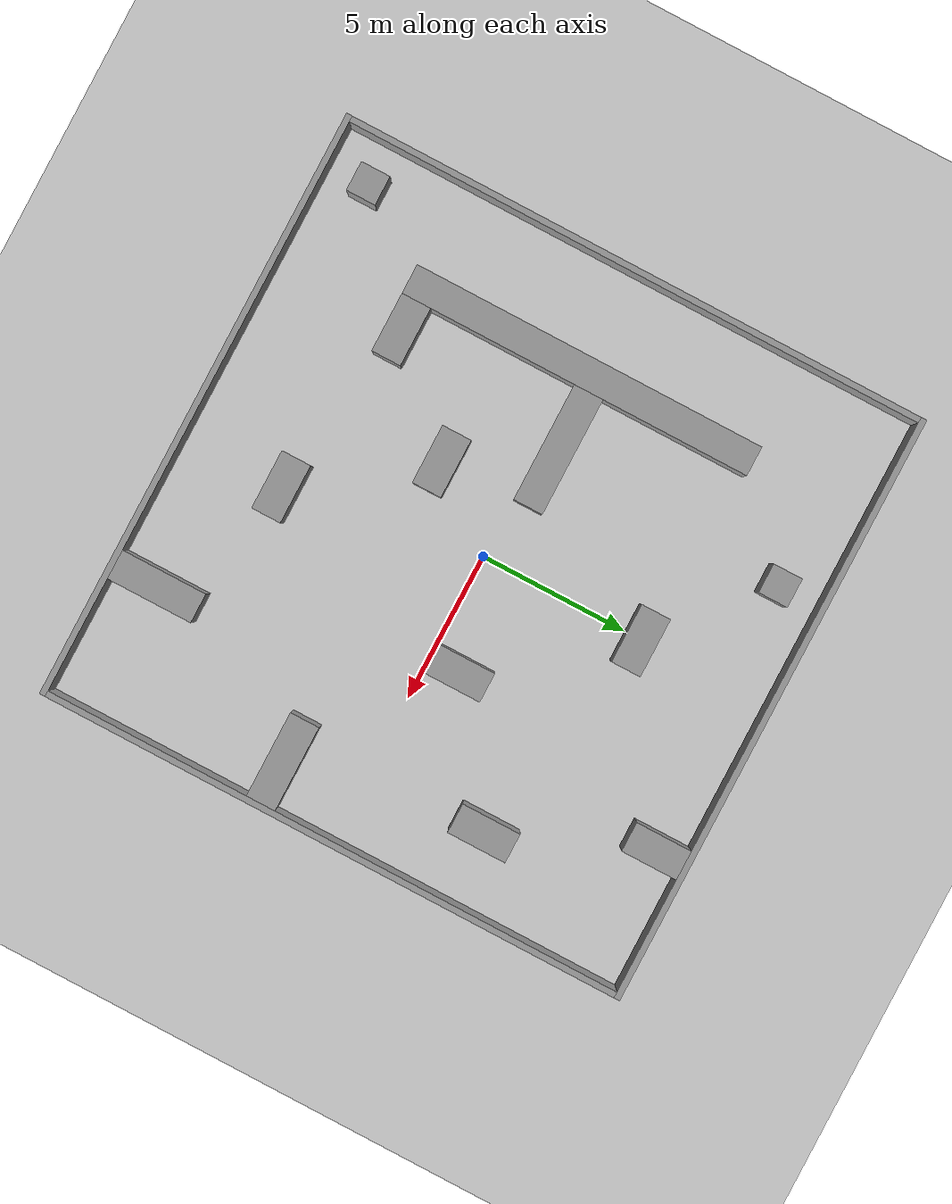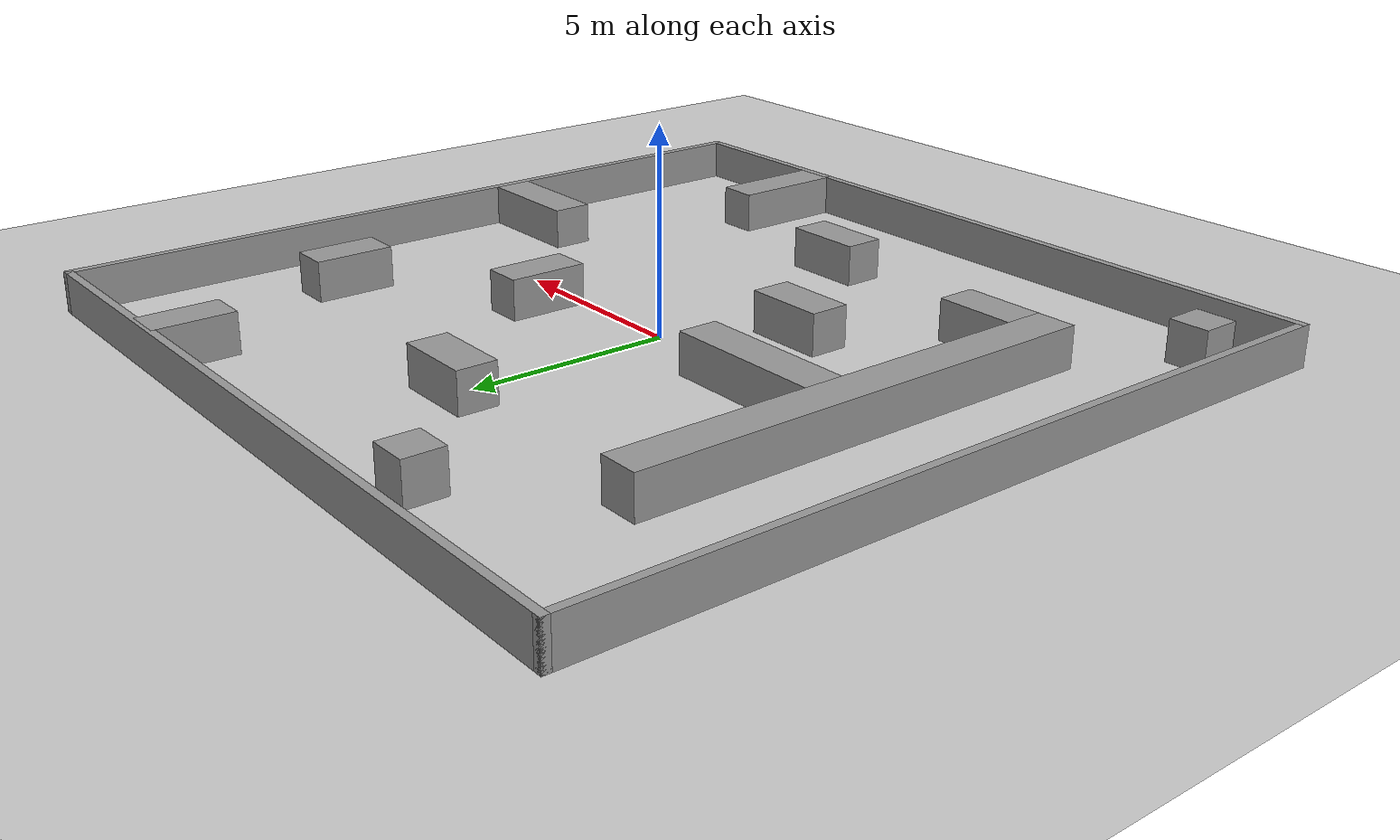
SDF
<?xml version="1.0" ?>
<sdf version="1.3">
  <world name="default">
    <!-- A global light source -->
    <include>
      <uri>model://sun</uri>
    </include>

    <!-- A ground plane -->
    <include>
      <uri>model://ground_plane</uri>
    </include>

<model name='BuildingDefaultName'>

    <link name='Wall_1'>
      <collision name='Wall_1_Collision'>
        <geometry>
          <box>
            <size>20.2 0.2 2</size>
          </box>
        </geometry>
        <pose>10.0 0 0 0 -0 0</pose>
      </collision>
      <visual name='Wall_1_Visual'>
        <pose>10.0 0 0 0 -0 0</pose>
        <geometry>
          <box>
            <size>20.2 0.2 2</size>
          </box>
        </geometry>
        <material>
          <script>
            <uri>file://media/materials/scripts/gazebo.material</uri>
            <name>Gazebo/Grey</name>
          </script>
        </material>
      </visual>
      <velocity_decay>
        <linear>0</linear>
        <angular>0</angular>
      </velocity_decay>
      <pose>-10.0 -10.0 0 0 -0 0</pose>
    </link>
    <link name='Wall_2'>
      <collision name='Wall_2_Collision'>
        <geometry>
          <box>
            <size>20.2 0.2 2</size>
          </box>
        </geometry>
        <pose>10.0 0 0 0 -0 0</pose>
      </collision>
      <visual name='Wall_2_Visual'>
        <pose>10.0 0 0 0 -0 0</pose>
        <geometry>
          <box>
            <size>20.2 0.2 2</size>
          </box>
        </geometry>
        <material>
          <script>
            <uri>file://media/materials/scripts/gazebo.material</uri>
            <name>Gazebo/Grey</name>
          </script>
        </material>
      </visual>
      <velocity_decay>
        <linear>0</linear>
        <angular>0</angular>
      </velocity_decay>
      <pose>-10.0 10.0 0 0 -0 0</pose>
    </link>
    <link name='Wall_3'>
      <collision name='Wall_3_Collision'>
        <geometry>
          <box>
            <size>0.2 20.2 2</size>
          </box>
        </geometry>
        <pose>0.0 10.0 0 0 -0 0</pose>
      </collision>
      <visual name='Wall_3_Visual'>
        <pose>0.0 10.0 0 0 -0 0</pose>
        <geometry>
          <box>
            <size>0.2 20.2 2</size>
          </box>
        </geometry>
        <material>
          <script>
            <uri>file://media/materials/scripts/gazebo.material</uri>
            <name>Gazebo/Grey</name>
          </script>
        </material>
      </visual>
      <velocity_decay>
        <linear>0</linear>
        <angular>0</angular>
      </velocity_decay>
      <pose>-10.0 -10.0 0 0 -0 0</pose>
    </link>
    <link name='Wall_4'>
      <collision name='Wall_4_Collision'>
        <geometry>
          <box>
            <size>0.2 20.2 2</size>
          </box>
        </geometry>
        <pose>0.0 10.0 0 0 -0 0</pose>
      </collision>
      <visual name='Wall_4_Visual'>
        <pose>0.0 10.0 0 0 -0 0</pose>
        <geometry>
          <box>
            <size>0.2 20.2 2</size>
          </box>
        </geometry>
        <material>
          <script>
            <uri>file://media/materials/scripts/gazebo.material</uri>
            <name>Gazebo/Grey</name>
          </script>
        </material>
      </visual>
      <velocity_decay>
        <linear>0</linear>
        <angular>0</angular>
      </velocity_decay>
      <pose>10.0 -10.0 0 0 -0 0</pose>
    </link>
    <link name='Wall_5'>
      <collision name='Wall_5_Collision'>
        <geometry>
          <box>
            <size>1.0 12.0 2</size>
          </box>
        </geometry>
        <pose>-4.5 -4.0 0 0 -0 0</pose>
      </collision>
      <visual name='Wall_5_Visual'>
        <pose>-4.5 -4.0 0 0 -0 0</pose>
        <geometry>
          <box>
            <size>1.0 12.0 2</size>
          </box>
        </geometry>
        <material>
          <script>
            <uri>file://media/materials/scripts/gazebo.material</uri>
            <name>Gazebo/Grey</name>
          </script>
        </material>
      </visual>
      <velocity_decay>
        <linear>0</linear>
        <angular>0</angular>
      </velocity_decay>
      <pose>-2.0 4.0 0 0 -0 0</pose>
    </link>
    <link name='Wall_6'>
      <collision name='Wall_6_Collision'>
        <geometry>
          <box>
            <size>4.0 1.0 2</size>
          </box>
        </geometry>
        <pose>3.0 -6.5 0 0 -0 0</pose>
      </collision>
      <visual name='Wall_6_Visual'>
        <pose>3.0 -6.5 0 0 -0 0</pose>
        <geometry>
          <box>
            <size>4.0 1.0 2</size>
          </box>
        </geometry>
        <material>
          <script>
            <uri>file://media/materials/scripts/gazebo.material</uri>
            <name>Gazebo/Grey</name>
          </script>
        </material>
      </visual>
      <velocity_decay>
        <linear>0</linear>
        <angular>0</angular>
      </velocity_decay>
      <pose>-7.0 7.0 0 0 -0 0</pose>
    </link>
    <link name='Wall_7'>
      <collision name='Wall_7_Collision'>
        <geometry>
          <box>
            <size>2.0 1.0 2</size>
          </box>
        </geometry>
        <pose>7.0 -1.5 0 0 -0 0</pose>
      </collision>
      <visual name='Wall_7_Visual'>
        <pose>7.0 -1.5 0 0 -0 0</pose>
        <geometry>
          <box>
            <size>2.0 1.0 2</size>
          </box>
        </geometry>
        <material>
          <script>
            <uri>file://media/materials/scripts/gazebo.material</uri>
            <name>Gazebo/Grey</name>
          </script>
        </material>
      </visual>
      <velocity_decay>
        <linear>0</linear>
        <angular>0</angular>
      </velocity_decay>
      <pose>-7.0 7.0 0 0 -0 0</pose>
    </link>
    <link name='Wall_8'>
      <collision name='Wall_8_Collision'>
        <geometry>
          <box>
            <size>2.0 1.0 2</size>
          </box>
        </geometry>
        <pose>2.0 -12.50 0 0 -0 0</pose>
      </collision>
      <visual name='Wall_8_Visual'>
        <pose>2.0 -12.50 0 0 -0 0</pose>
        <geometry>
          <box>
            <size>2.0 1.0 2</size>
          </box>
        </geometry>
        <material>
          <script>
            <uri>file://media/materials/scripts/gazebo.material</uri>
            <name>Gazebo/Grey</name>
          </script>
        </material>
      </visual>
      <velocity_decay>
        <linear>0</linear>
        <angular>0</angular>
      </velocity_decay>
      <pose>-7.0 7.0 0 0 -0 0</pose>
    </link>
    <link name='Wall_9'>
      <collision name='Wall_9_Collision'>
        <geometry>
          <box>
            <size>3.0 1.0 2</size>
          </box>
        </geometry>
        <pose>10.5 -7.5 0 0 -0 0</pose>
      </collision>
      <visual name='Wall_9_Visual'>
        <pose>10.5 -7.5 0 0 -0 0</pose>
        <geometry>
          <box>
            <size>3.0 1.0 2</size>
          </box>
        </geometry>
        <material>
          <script>
            <uri>file://media/materials/scripts/gazebo.material</uri>
            <name>Gazebo/Grey</name>
          </script>
        </material>
      </visual>
      <velocity_decay>
        <linear>0</linear>
        <angular>0</angular>
      </velocity_decay>
      <pose>-2.0 5.0 0 0 -0 0</pose>
    </link>
    <link name='Wall_10'>
      <collision name='Wall_10_Collision'>
        <geometry>
          <box>
            <size>1.0 3.0 2</size>
          </box>
        </geometry>
        <pose>7.5 -13.5 0 0 -0 0</pose>
      </collision>
      <visual name='Wall_10_Visual'>
        <pose>7.5 -13.5 0 0 -0 0</pose>
        <geometry>
          <box>
            <size>1.0 3.0 2</size>
          </box>
        </geometry>
        <material>
          <script>
            <uri>file://media/materials/scripts/gazebo.material</uri>
            <name>Gazebo/Grey</name>
          </script>
        </material>
      </visual>
      <velocity_decay>
        <linear>0</linear>
        <angular>0</angular>
      </velocity_decay>
      <pose>-2.0 5.0 0 0 -0 0</pose>
    </link>
    <link name='Wall_11'>
      <collision name='Wall_11_Collision'>
        <geometry>
          <box>
            <size>2.0 1.0 2</size>
          </box>
        </geometry>
        <pose>5.0 -9.5 0 0 -0 0</pose>
      </collision>
      <visual name='Wall_11_Visual'>
        <pose>5.0 -9.5 0 0 -0 0</pose>
        <geometry>
          <box>
            <size>2.0 1.0 2</size>
          </box>
        </geometry>
        <material>
          <script>
            <uri>file://media/materials/scripts/gazebo.material</uri>
            <name>Gazebo/Grey</name>
          </script>
        </material>
      </visual>
      <velocity_decay>
        <linear>0</linear>
        <angular>0</angular>
      </velocity_decay>
      <pose>-7.0 7.0 0 0 -0 0</pose>
    </link>

    <link name='Wall_12'>
      <collision name='Wall_12_Collision'>
        <geometry>
          <box>
            <size>2.0 1.0 2</size>
          </box>
        </geometry>
        <pose>8.0 -13.5 0 0 -0 0</pose>
      </collision>
      <visual name='Wall_12_Visual'>
        <pose>8.0 -13.5 0 0 -0 0</pose>
        <geometry>
          <box>
            <size>2.0 1.0 2</size>
          </box>
        </geometry>
        <material>
          <script>
            <uri>file://media/materials/scripts/gazebo.material</uri>
            <name>Gazebo/Grey</name>
          </script>
        </material>
      </visual>
      <velocity_decay>
        <linear>0</linear>
        <angular>0</angular>
      </velocity_decay>
      <pose>-7.0 7.0 0 0 -0 0</pose>
    </link>

    <link name='Wall_13'>
      <collision name='Wall_13_Collision'>
        <geometry>
          <box>
            <size>1.0 2.0 2</size>
          </box>
        </geometry>
        <pose>10.5 -6.0 0 0 -0 0</pose>
      </collision>
      <visual name='Wall_13_Visual'>
        <pose>10.5 -6.0 0 0 -0 0</pose>
        <geometry>
          <box>
            <size>1.0 2.0 2</size>
          </box>
        </geometry>
        <material>
          <script>
            <uri>file://media/materials/scripts/gazebo.material</uri>
            <name>Gazebo/Grey</name>
          </script>
        </material>
      </visual>
      <velocity_decay>
        <linear>0</linear>
        <angular>0</angular>
      </velocity_decay>
      <pose>-7.0 7.0 0 0 -0 0</pose>
    </link>

    <link name='Wall_14'>
      <collision name='Wall_14_Collision'>
        <geometry>
          <box>
            <size>1.0 2.0 2</size>
          </box>
        </geometry>
        <pose>14.5 -3.0 0 0 -0 0</pose>
      </collision>
      <visual name='Wall_14_Visual'>
        <pose>14.5 -3.0 0 0 -0 0</pose>
        <geometry>
          <box>
            <size>1.0 2.0 2</size>
          </box>
        </geometry>
        <material>
          <script>
            <uri>file://media/materials/scripts/gazebo.material</uri>
            <name>Gazebo/Grey</name>
          </script>
        </material>
      </visual>
      <velocity_decay>
        <linear>0</linear>
        <angular>0</angular>
      </velocity_decay>
      <pose>-7.0 7.0 0 0 -0 0</pose>
    </link>

    <link name='Wall_15'>
      <collision name='Wall_15_Collision'>
        <geometry>
          <box>
            <size>1.0 2.0 2</size>
          </box>
        </geometry>
        <pose>12.5 2.0 0 0 -0 0</pose>
      </collision>
      <visual name='Wall_15_Visual'>
        <pose>12.5 2.0 0 0 -0 0</pose>
        <geometry>
          <box>
            <size>1.0 2.0 2</size>
          </box>
        </geometry>
        <material>
          <script>
            <uri>file://media/materials/scripts/gazebo.material</uri>
            <name>Gazebo/Grey</name>
          </script>
        </material>
      </visual>
      <velocity_decay>
        <linear>0</linear>
        <angular>0</angular>
      </velocity_decay>
      <pose>-7.0 7.0 0 0 -0 0</pose>
    </link>

    <link name='Wall_16'>
      <collision name='Wall_16_Collision'>
        <geometry>
          <box>
            <size>1.0 1.0 2</size>
          </box>
        </geometry>
        <pose>3.5 1.5 0 0 -0 0</pose>
      </collision>
      <visual name='Wall_16_Visual'>
        <pose>3.5 1.5 0 0 -0 0</pose>
        <geometry>
          <box>
            <size>1.0 1.0 2</size>
          </box>
        </geometry>
        <material>
          <script>
            <uri>file://media/materials/scripts/gazebo.material</uri>
            <name>Gazebo/Grey</name>
          </script>
        </material>
      </visual>
      <velocity_decay>
        <linear>0</linear>
        <angular>0</angular>
      </velocity_decay>
      <pose>-7.0 7.0 0 0 -0 0</pose>
    </link>

    <link name='Wall_17'>
      <collision name='Wall_17_Collision'>
        <geometry>
          <box>
            <size>1.0 1.0 2</size>
          </box>
        </geometry>
        <pose>-1.5 -15.5 0 0 -0 0</pose>
      </collision>
      <visual name='Wall_17_Visual'>
        <pose>-1.5 -15.5 0 0 -0 0</pose>
        <geometry>
          <box>
            <size>1.0 1.0 2</size>
          </box>
        </geometry>
        <material>
          <script>
            <uri>file://media/materials/scripts/gazebo.material</uri>
            <name>Gazebo/Grey</name>
          </script>
        </material>
      </visual>
      <velocity_decay>
        <linear>0</linear>
        <angular>0</angular>
      </velocity_decay>
      <pose>-7.0 7.0 0 0 -0 0</pose>
    </link>

    <static>1</static>
  </model>

  </world>
</sdf>
